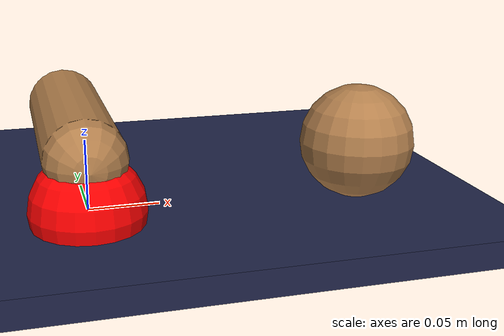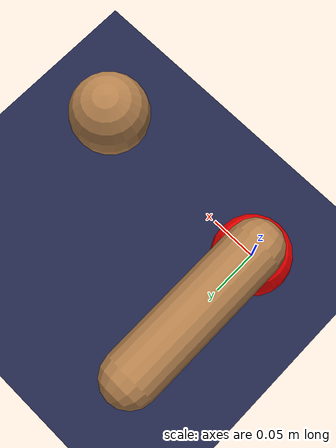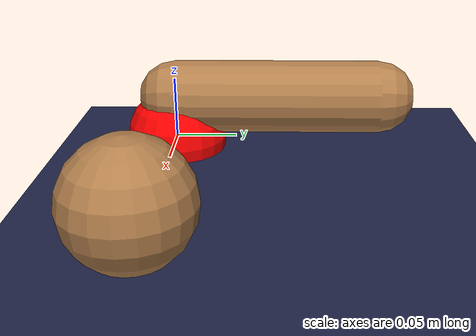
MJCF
<mujoco model="planar point mass">
    <compiler angle="radian"/>
    <visual>
        <quality shadowsize="2048" />
        <headlight ambient="0.4 0.4 0.4" diffuse="0.8 0.8 0.8" specular="0.1 0.1 0.1" />
    </visual>

    <option impratio="10" iterations="1" ls_iterations="4" timestep="0.01">
        <flag eulerdamp="disable"/>
    </option>

    <custom>
        <numeric data="15" name="max_contact_points"/>
        <numeric data="15" name="max_geom_pairs"/>
    </custom>

    <asset>
        <texture type="skybox" name="skybox" builtin="gradient" mark="random" rgb1="0.4 0.6 0.8" rgb2="0 0 0" markrgb="1 1 1" width="800" height="4800" />
        <texture type="2d" name="grid" builtin="checker" mark="edge" rgb1="0.1 0.2 0.3" rgb2="0.2 0.3 0.4" markrgb="0.2 0.3 0.4" width="300" height="300" />
        <material name="grid" texture="grid" texuniform="true" reflectance="0.2" />
        <material name="self" rgba="0.7 0.5 0.3 1" />
        <material name="self_default" rgba="0.7 0.5 0.3 1" />
        <material name="self_highlight" rgba="0 0.5 0.3 1" />
        <material name="effector" rgba="0.7 0.4 0.2 1" />
        <material name="effector_default" rgba="0.7 0.4 0.2 1" />
        <material name="effector_highlight" rgba="0 0.5 0.3 1" />
        <material name="decoration" rgba="0.3 0.5 0.7 1" />
        <material name="eye" rgba="0 0.2 1 1" />
        <material name="target" rgba="0.6 0.3 0.3 1" />
        <material name="target_default" rgba="0.6 0.3 0.3 1" />
        <material name="target_highlight" rgba="0.6 0.3 0.3 0.4" />
    </asset>

    <worldbody>
        <camera name="fixed" pos="0 0 0.75" />
        <light name="light" pos="0 0 1" dir="0 0 -1" />
        <geom name="ground" size="1 1 0.01" pos="-0.0 0 -0.02" type="box" rgba=".123 .140 .28 1" contype="1" conaffinity="2"/>

        <body name="middle" pos="0.0 0.0 0.035" quat="0.707107 0.707107 0 0">
            <!-- Middle body: Capsule with a free joint -->
            <joint name="middle_free_joint" type="free" damping="0.001"/>
            <geom name="middle_geom" type="capsule" material="self" size=".03" fromto="0 0 0 0 0 -.17" contype="4" conaffinity="3" mass=".025" solimp="0.1 0.95 0.1 0.5 2" solref="0.02 1.0"/>

            <!-- Left body: Revolute joint -->
            <!-- Right body: Revolute joint -->
        </body>

        <body name="object" pos="0.2 0.0 0.035">
            <joint type="free" damping="0.001"/>
            <camera name="cam0" pos="0 -0.3 0.3" xyaxes="1 0 0 0 0.7 0.7"/>
            <geom name="pointmass" type="sphere" size=".042" material="self" mass="0.01" condim="3"  group="2" solimp="0.1 0.95 0.1 0.5 2" solref="0.02 1.0"/>
            <site name="sphere_type" size="0.042"/>
        </body>

        <body mocap="true" name="mocap_target">
            <geom type="sphere" size="0.042" rgba="1 0 0 1" contype="0" conaffinity="0"/>
        </body>
    </worldbody>

    <sensor>
        <touch name="touch_sphere" site="sphere_type"/>
    </sensor>
</mujoco>
